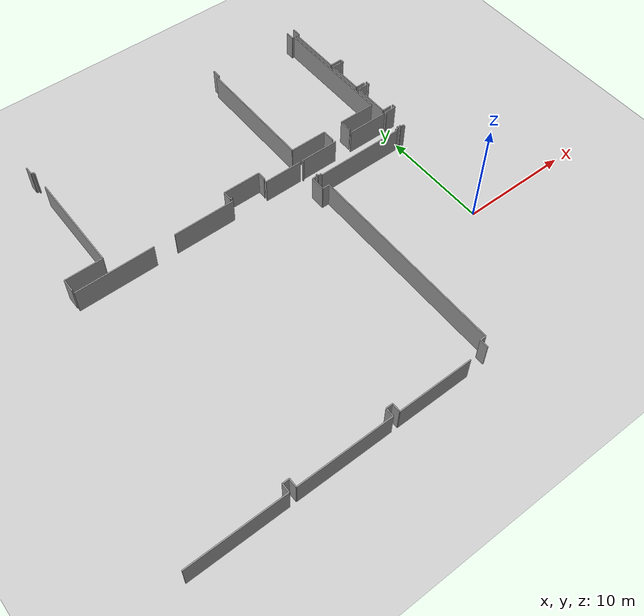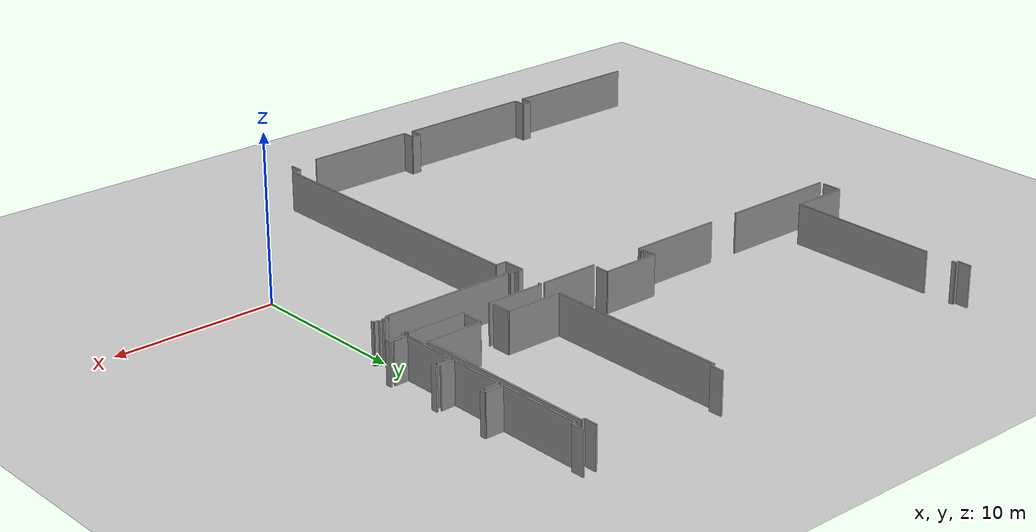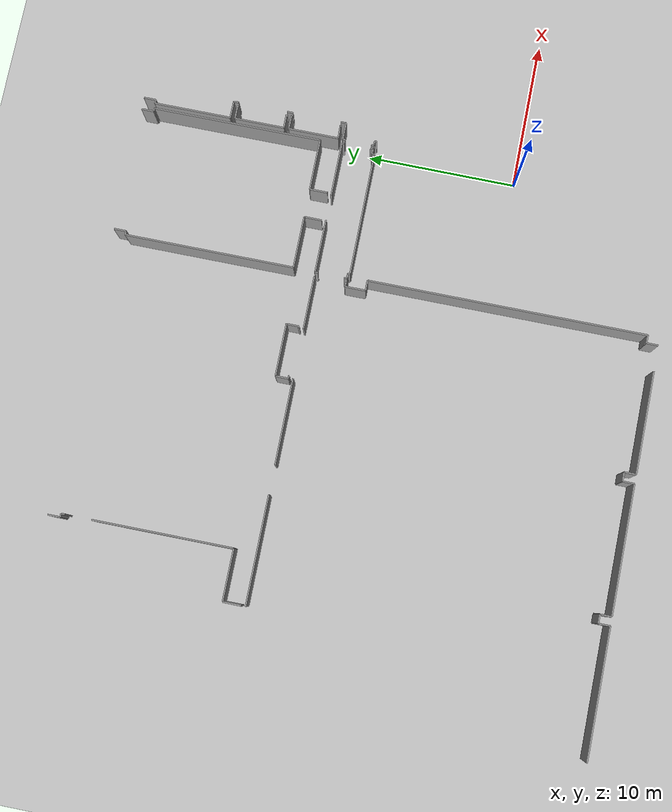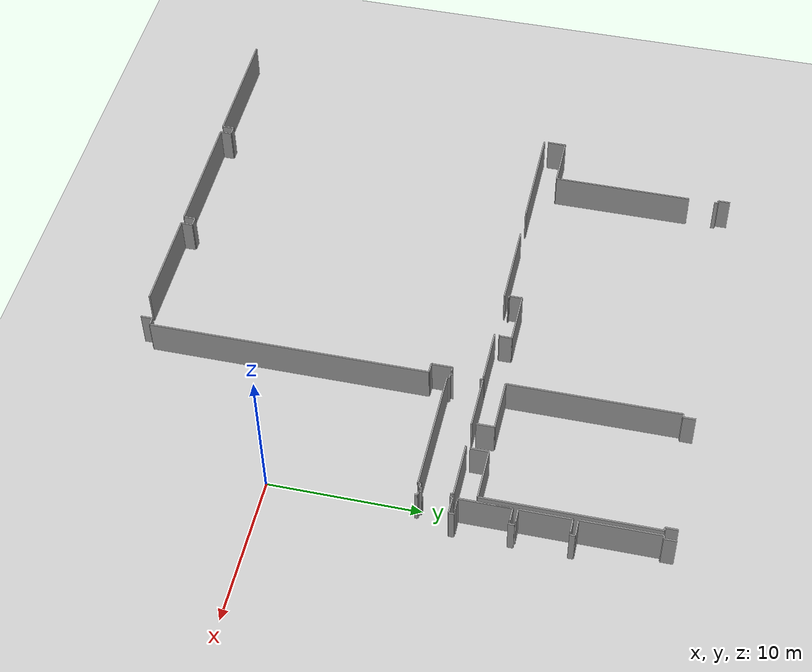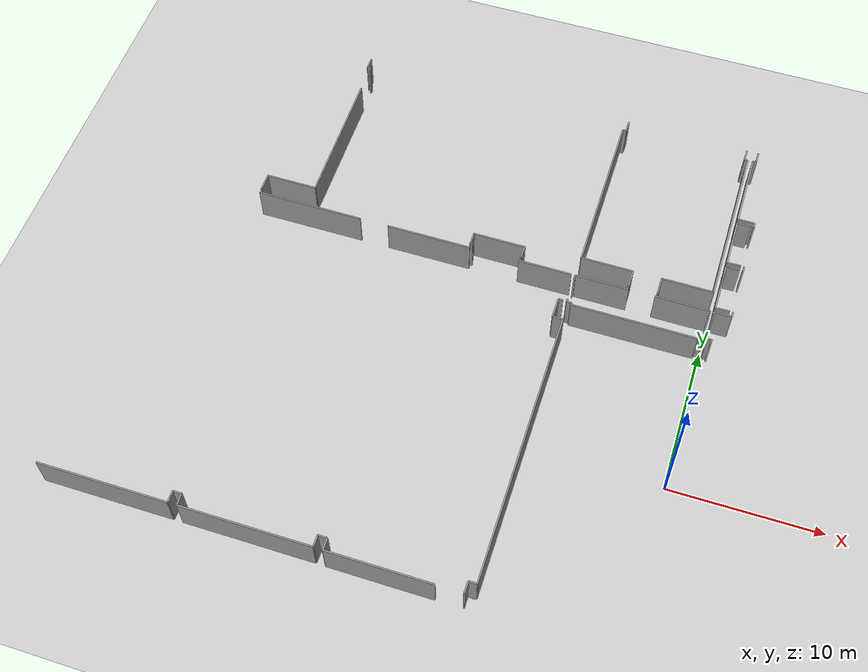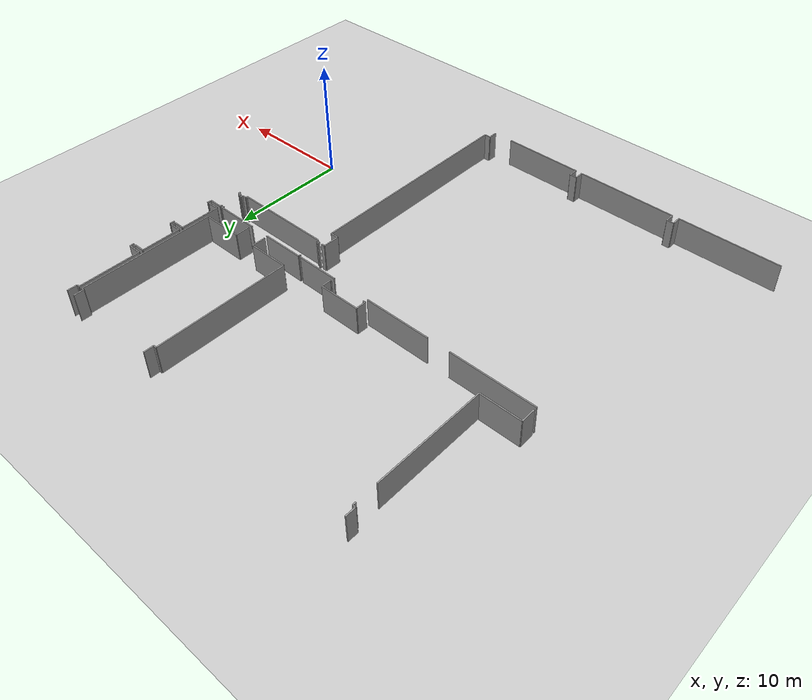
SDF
<sdf version="1.6">
 <world name="default">
  <model name="ground_plane">
   <static>1</static>
   <link name="link">
    <collision name="collision">
     <geometry><plane><normal>0 0 1</normal><size>100 100</size></plane></geometry>
     <surface><friction><ode><mu>100</mu><mu2>50</mu2></ode></friction></surface>
    </collision>
    <visual name="visual">
     <cast_shadows>0</cast_shadows>
     <geometry><plane><normal>0 0 1</normal><size>100 100</size></plane></geometry>
     <material>
      <script><uri>file://media/materials/scripts/gazebo.material</uri><name>Gazebo/Grey</name></script>
     </material>
    </visual>
   </link>
  </model>
  <model name="50045367">
   <static>1</static>
   <link name="Wall_20">
    <collision name="Wall_20_Collision">
     <geometry><box><size>0.819528431323 0.1 2.5</size></box></geometry>
     <pose>0.409764215661 0 1.25 0 0 0</pose>
    </collision>
    <visual name="Wall_20_Visual">
     <pose>0.409764215661 0 1.25 0 0 0</pose>
     <geometry><box><size>0.819528431323 0.1 2.5</size></box></geometry>
     <material>
      <script><uri>file://media/materials/scripts/gazebo.material</uri><name>Gazebo/Grey</name></script>
      <ambient>1 1 1 1</ambient>
     </material>
    </visual>
    <pose>25.0961685045 -0.00800345546013 0 0 0 -1.57079632679</pose>
   </link>
   <link name="Wall_21">
    <collision name="Wall_21_Collision">
     <geometry><box><size>0.229305350882 0.1 2.5</size></box></geometry>
     <pose>0.114652675441 0 1.25 0 0 0</pose>
    </collision>
    <visual name="Wall_21_Visual">
     <pose>0.114652675441 0 1.25 0 0 0</pose>
     <geometry><box><size>0.229305350882 0.1 2.5</size></box></geometry>
     <material>
      <script><uri>file://media/materials/scripts/gazebo.material</uri><name>Gazebo/Grey</name></script>
      <ambient>1 1 1 1</ambient>
     </material>
    </visual>
    <pose>25.0961685045 -0.827531886783 0 0 0 0.0</pose>
   </link>
   <link name="Wall_22">
    <collision name="Wall_22_Collision">
     <geometry><box><size>0.253188678286 0.1 2.5</size></box></geometry>
     <pose>0.126594339143 0 1.25 0 0 0</pose>
    </collision>
    <visual name="Wall_22_Visual">
     <pose>0.126594339143 0 1.25 0 0 0</pose>
     <geometry><box><size>0.253188678286 0.1 2.5</size></box></geometry>
     <material>
      <script><uri>file://media/materials/scripts/gazebo.material</uri><name>Gazebo/Grey</name></script>
      <ambient>1 1 1 1</ambient>
     </material>
    </visual>
    <pose>25.3254738554 -0.827531886783 0 0 0 -1.57079632679</pose>
   </link>
   <link name="Wall_23">
    <collision name="Wall_23_Collision">
     <geometry><box><size>9.36632958992 0.1 2.5</size></box></geometry>
     <pose>4.68316479496 0 1.25 0 0 0</pose>
    </collision>
    <visual name="Wall_23_Visual">
     <pose>4.68316479496 0 1.25 0 0 0</pose>
     <geometry><box><size>9.36632958992 0.1 2.5</size></box></geometry>
     <material>
      <script><uri>file://media/materials/scripts/gazebo.material</uri><name>Gazebo/Grey</name></script>
      <ambient>1 1 1 1</ambient>
     </material>
    </visual>
    <pose>25.3254738554 -2.82903094669 0 0 0 -1.57079632679</pose>
   </link>
   <link name="Wall_24">
    <collision name="Wall_24_Collision">
     <geometry><box><size>3.45863610956 0.1 2.5</size></box></geometry>
     <pose>1.72931805478 0 1.25 0 0 0</pose>
    </collision>
    <visual name="Wall_24_Visual">
     <pose>1.72931805478 0 1.25 0 0 0</pose>
     <geometry><box><size>3.45863610956 0.1 2.5</size></box></geometry>
     <material>
      <script><uri>file://media/materials/scripts/gazebo.material</uri><name>Gazebo/Grey</name></script>
      <ambient>1 1 1 1</ambient>
     </material>
    </visual>
    <pose>25.3254738554 -12.1953605366 0 0 0 3.14159265359</pose>
   </link>
   <link name="Wall_25">
    <collision name="Wall_25_Collision">
     <geometry><box><size>1.22795873774 0.1 2.5</size></box></geometry>
     <pose>0.61397936887 0 1.25 0 0 0</pose>
    </collision>
    <visual name="Wall_25_Visual">
     <pose>0.61397936887 0 1.25 0 0 0</pose>
     <geometry><box><size>1.22795873774 0.1 2.5</size></box></geometry>
     <material>
      <script><uri>file://media/materials/scripts/gazebo.material</uri><name>Gazebo/Grey</name></script>
      <ambient>1 1 1 1</ambient>
     </material>
    </visual>
    <pose>21.8668377458 -12.1953605366 0 0 0 -1.57079632679</pose>
   </link>
   <link name="Wall_32">
    <collision name="Wall_32_Collision">
     <geometry><box><size>11.3834544438 0.1 2.5</size></box></geometry>
     <pose>5.69172722191 0 1.25 0 0 0</pose>
    </collision>
    <visual name="Wall_32_Visual">
     <pose>5.69172722191 0 1.25 0 0 0</pose>
     <geometry><box><size>11.3834544438 0.1 2.5</size></box></geometry>
     <material>
      <script><uri>file://media/materials/scripts/gazebo.material</uri><name>Gazebo/Grey</name></script>
      <ambient>1 1 1 1</ambient>
     </material>
    </visual>
    <pose>44.1388027847 -12.2188627471 0 0 0 1.57079632679</pose>
   </link>
   <link name="Wall_33">
    <collision name="Wall_33_Collision">
     <geometry><box><size>0.248742314142 0.1 2.5</size></box></geometry>
     <pose>0.124371157071 0 1.25 0 0 0</pose>
    </collision>
    <visual name="Wall_33_Visual">
     <pose>0.124371157071 0 1.25 0 0 0</pose>
     <geometry><box><size>0.248742314142 0.1 2.5</size></box></geometry>
     <material>
      <script><uri>file://media/materials/scripts/gazebo.material</uri><name>Gazebo/Grey</name></script>
      <ambient>1 1 1 1</ambient>
     </material>
    </visual>
    <pose>44.1388027847 -0.835408303267 0 0 0 0.0</pose>
   </link>
   <link name="Wall_34">
    <collision name="Wall_34_Collision">
     <geometry><box><size>0.821052899029 0.1 2.5</size></box></geometry>
     <pose>0.410526449515 0 1.25 0 0 0</pose>
    </collision>
    <visual name="Wall_34_Visual">
     <pose>0.410526449515 0 1.25 0 0 0</pose>
     <geometry><box><size>0.821052899029 0.1 2.5</size></box></geometry>
     <material>
      <script><uri>file://media/materials/scripts/gazebo.material</uri><name>Gazebo/Grey</name></script>
      <ambient>1 1 1 1</ambient>
     </material>
    </visual>
    <pose>44.3875450988 -0.835408303267 0 0 0 1.57079632679</pose>
   </link>
   <link name="Wall_35">
    <collision name="Wall_35_Collision">
     <geometry><box><size>0.822704405712 0.1 2.5</size></box></geometry>
     <pose>0.411352202856 0 1.25 0 0 0</pose>
    </collision>
    <visual name="Wall_35_Visual">
     <pose>0.411352202856 0 1.25 0 0 0</pose>
     <geometry><box><size>0.822704405712 0.1 2.5</size></box></geometry>
     <material>
      <script><uri>file://media/materials/scripts/gazebo.material</uri><name>Gazebo/Grey</name></script>
      <ambient>1 1 1 1</ambient>
     </material>
    </visual>
    <pose>52.8263631282 -0.014355404238 0 0 0 -1.57079632679</pose>
   </link>
   <link name="Wall_36">
    <collision name="Wall_36_Collision">
     <geometry><box><size>0.218252960008 0.1 2.5</size></box></geometry>
     <pose>0.109126480004 0 1.25 0 0 0</pose>
    </collision>
    <visual name="Wall_36_Visual">
     <pose>0.109126480004 0 1.25 0 0 0</pose>
     <geometry><box><size>0.218252960008 0.1 2.5</size></box></geometry>
     <material>
      <script><uri>file://media/materials/scripts/gazebo.material</uri><name>Gazebo/Grey</name></script>
      <ambient>1 1 1 1</ambient>
     </material>
    </visual>
    <pose>52.8263631282 -0.83705980995 0 0 0 0.0</pose>
   </link>
   <link name="Wall_37">
    <collision name="Wall_37_Collision">
     <geometry><box><size>11.3736724427 0.1 2.5</size></box></geometry>
     <pose>5.68683622135 0 1.25 0 0 0</pose>
    </collision>
    <visual name="Wall_37_Visual">
     <pose>5.68683622135 0 1.25 0 0 0</pose>
     <geometry><box><size>11.3736724427 0.1 2.5</size></box></geometry>
     <material>
      <script><uri>file://media/materials/scripts/gazebo.material</uri><name>Gazebo/Grey</name></script>
      <ambient>1 1 1 1</ambient>
     </material>
    </visual>
    <pose>53.0446160882 -0.83705980995 0 0 0 -1.57079632679</pose>
   </link>
   <link name="Wall_38">
    <collision name="Wall_38_Collision">
     <geometry><box><size>3.46587733117 0.1 2.5</size></box></geometry>
     <pose>1.73293866558 0 1.25 0 0 0</pose>
    </collision>
    <visual name="Wall_38_Visual">
     <pose>1.73293866558 0 1.25 0 0 0</pose>
     <geometry><box><size>3.46587733117 0.1 2.5</size></box></geometry>
     <material>
      <script><uri>file://media/materials/scripts/gazebo.material</uri><name>Gazebo/Grey</name></script>
      <ambient>1 1 1 1</ambient>
     </material>
    </visual>
    <pose>53.0446160882 -12.2107322527 0 0 0 3.14159265359</pose>
   </link>
   <link name="Wall_39">
    <collision name="Wall_39_Collision">
     <geometry><box><size>1.20585395599 0.1 2.5</size></box></geometry>
     <pose>0.602926977997 0 1.25 0 0 0</pose>
    </collision>
    <visual name="Wall_39_Visual">
     <pose>0.602926977997 0 1.25 0 0 0</pose>
     <geometry><box><size>1.20585395599 0.1 2.5</size></box></geometry>
     <material>
      <script><uri>file://media/materials/scripts/gazebo.material</uri><name>Gazebo/Grey</name></script>
      <ambient>1 1 1 1</ambient>
     </material>
    </visual>
    <pose>49.5787387571 -12.2107322527 0 0 0 -1.57079632679</pose>
   </link>
   <link name="Wall_40">
    <collision name="Wall_40_Collision">
     <geometry><box><size>1.18832257737 0.1 2.5</size></box></geometry>
     <pose>0.594161288683 0 1.25 0 0 0</pose>
    </collision>
    <visual name="Wall_40_Visual">
     <pose>0.594161288683 0 1.25 0 0 0</pose>
     <geometry><box><size>1.18832257737 0.1 2.5</size></box></geometry>
     <material>
      <script><uri>file://media/materials/scripts/gazebo.material</uri><name>Gazebo/Grey</name></script>
      <ambient>1 1 1 1</ambient>
     </material>
    </visual>
    <pose>47.6478733675 -13.4165862086 0 0 0 1.57079632679</pose>
   </link>
   <link name="Wall_41">
    <collision name="Wall_41_Collision">
     <geometry><box><size>3.50908317543 0.1 2.5</size></box></geometry>
     <pose>1.75454158771 0 1.25 0 0 0</pose>
    </collision>
    <visual name="Wall_41_Visual">
     <pose>1.75454158771 0 1.25 0 0 0</pose>
     <geometry><box><size>3.50908317543 0.1 2.5</size></box></geometry>
     <material>
      <script><uri>file://media/materials/scripts/gazebo.material</uri><name>Gazebo/Grey</name></script>
      <ambient>1 1 1 1</ambient>
     </material>
    </visual>
    <pose>47.6478733675 -12.2282636313 0 0 0 3.13891363603</pose>
   </link>
   <link name="Wall_42">
    <collision name="Wall_42_Collision">
     <geometry><box><size>3.34950962955 0.1 2.5</size></box></geometry>
     <pose>1.67475481478 0 1.25 0 0 0</pose>
    </collision>
    <visual name="Wall_42_Visual">
     <pose>1.67475481478 0 1.25 0 0 0</pose>
     <geometry><box><size>3.34950962955 0.1 2.5</size></box></geometry>
     <material>
      <script><uri>file://media/materials/scripts/gazebo.material</uri><name>Gazebo/Grey</name></script>
      <ambient>1 1 1 1</ambient>
     </material>
    </visual>
    <pose>53.4071853245 -9.65597845419 0 0 0 1.57079632679</pose>
   </link>
   <link name="Wall_43">
    <collision name="Wall_43_Collision">
     <geometry><box><size>0.927892677473 0.1 2.5</size></box></geometry>
     <pose>0.463946338737 0 1.25 0 0 0</pose>
    </collision>
    <visual name="Wall_43_Visual">
     <pose>0.463946338737 0 1.25 0 0 0</pose>
     <geometry><box><size>0.927892677473 0.1 2.5</size></box></geometry>
     <material>
      <script><uri>file://media/materials/scripts/gazebo.material</uri><name>Gazebo/Grey</name></script>
      <ambient>1 1 1 1</ambient>
     </material>
    </visual>
    <pose>53.4071853245 -6.30646882464 0 0 0 0.0</pose>
   </link>
   <link name="Wall_44">
    <collision name="Wall_44_Collision">
     <geometry><box><size>0.928028550876 0.1 2.5</size></box></geometry>
     <pose>0.464014275438 0 1.25 0 0 0</pose>
    </collision>
    <visual name="Wall_44_Visual">
     <pose>0.464014275438 0 1.25 0 0 0</pose>
     <geometry><box><size>0.928028550876 0.1 2.5</size></box></geometry>
     <material>
      <script><uri>file://media/materials/scripts/gazebo.material</uri><name>Gazebo/Grey</name></script>
      <ambient>1 1 1 1</ambient>
     </material>
    </visual>
    <pose>54.3350780019 -9.64009858225 0 0 0 -3.12448041392</pose>
   </link>
   <link name="Wall_45">
    <collision name="Wall_45_Collision">
     <geometry><box><size>3.38812947812 0.1 2.5</size></box></geometry>
     <pose>1.69406473906 0 1.25 0 0 0</pose>
    </collision>
    <visual name="Wall_45_Visual">
     <pose>1.69406473906 0 1.25 0 0 0</pose>
     <geometry><box><size>3.38812947812 0.1 2.5</size></box></geometry>
     <material>
      <script><uri>file://media/materials/scripts/gazebo.material</uri><name>Gazebo/Grey</name></script>
      <ambient>1 1 1 1</ambient>
     </material>
    </visual>
    <pose>53.4104883378 -13.3705980995 0 0 0 1.57079632679</pose>
   </link>
   <link name="Wall_46">
    <collision name="Wall_46_Collision">
     <geometry><box><size>0.910869454749 0.1 2.5</size></box></geometry>
     <pose>0.455434727374 0 1.25 0 0 0</pose>
    </collision>
    <visual name="Wall_46_Visual">
     <pose>0.455434727374 0 1.25 0 0 0</pose>
     <geometry><box><size>0.910869454749 0.1 2.5</size></box></geometry>
     <material>
      <script><uri>file://media/materials/scripts/gazebo.material</uri><name>Gazebo/Grey</name></script>
      <ambient>1 1 1 1</ambient>
     </material>
    </visual>
    <pose>53.4104883378 -9.98246862137 0 0 0 0.0</pose>
   </link>
   <link name="Wall_47">
    <collision name="Wall_47_Collision">
     <geometry><box><size>0.910929021146 0.1 2.5</size></box></geometry>
     <pose>0.455464510573 0 1.25 0 0 0</pose>
    </collision>
    <visual name="Wall_47_Visual">
     <pose>0.455464510573 0 1.25 0 0 0</pose>
     <geometry><box><size>0.910929021146 0.1 2.5</size></box></geometry>
     <material>
      <script><uri>file://media/materials/scripts/gazebo.material</uri><name>Gazebo/Grey</name></script>
      <ambient>1 1 1 1</ambient>
     </material>
    </visual>
    <pose>54.3213577926 -13.3601809035 0 0 0 -3.13015661102</pose>
   </link>
   <link name="Wall_48">
    <collision name="Wall_48_Collision">
     <geometry><box><size>3.37758524315 0.1 2.5</size></box></geometry>
     <pose>1.68879262158 0 1.25 0 0 0</pose>
    </collision>
    <visual name="Wall_48_Visual">
     <pose>1.68879262158 0 1.25 0 0 0</pose>
     <geometry><box><size>3.37758524315 0.1 2.5</size></box></geometry>
     <material>
      <script><uri>file://media/materials/scripts/gazebo.material</uri><name>Gazebo/Grey</name></script>
      <ambient>1 1 1 1</ambient>
     </material>
    </visual>
    <pose>53.4074394024 -13.3684384369 0 0 0 1.57079632679</pose>
   </link>
   <link name="Wall_49">
    <collision name="Wall_49_Collision">
     <geometry><box><size>0.929798262107 0.1 2.5</size></box></geometry>
     <pose>0.464899131053 0 1.25 0 0 0</pose>
    </collision>
    <visual name="Wall_49_Visual">
     <pose>0.464899131053 0 1.25 0 0 0</pose>
     <geometry><box><size>0.929798262107 0.1 2.5</size></box></geometry>
     <material>
      <script><uri>file://media/materials/scripts/gazebo.material</uri><name>Gazebo/Grey</name></script>
      <ambient>1 1 1 1</ambient>
     </material>
    </visual>
    <pose>53.4074394024 -9.99085319376 0 0 0 0.0</pose>
   </link>
   <link name="Wall_50">
    <collision name="Wall_50_Collision">
     <geometry><box><size>0.930031655432 0.1 2.5</size></box></geometry>
     <pose>0.465015827716 0 1.25 0 0 0</pose>
    </collision>
    <visual name="Wall_50_Visual">
     <pose>0.465015827716 0 1.25 0 0 0</pose>
     <geometry><box><size>0.930031655432 0.1 2.5</size></box></geometry>
     <material>
      <script><uri>file://media/materials/scripts/gazebo.material</uri><name>Gazebo/Grey</name></script>
      <ambient>1 1 1 1</ambient>
     </material>
    </visual>
    <pose>54.3372376645 -13.3476040449 0 0 0 -3.11918896996</pose>
   </link>
   <link name="Wall_51">
    <collision name="Wall_51_Collision">
     <geometry><box><size>5.15943391432 0.1 2.5</size></box></geometry>
     <pose>2.57971695716 0 1.25 0 0 0</pose>
    </collision>
    <visual name="Wall_51_Visual">
     <pose>2.57971695716 0 1.25 0 0 0</pose>
     <geometry><box><size>5.15943391432 0.1 2.5</size></box></geometry>
     <material>
      <script><uri>file://media/materials/scripts/gazebo.material</uri><name>Gazebo/Grey</name></script>
      <ambient>1 1 1 1</ambient>
     </material>
    </visual>
    <pose>53.3932110371 -5.96968850043 0 0 0 1.57079632679</pose>
   </link>
   <link name="Wall_52">
    <collision name="Wall_52_Collision">
     <geometry><box><size>0.24023070278 0.1 2.5</size></box></geometry>
     <pose>0.12011535139 0 1.25 0 0 0</pose>
    </collision>
    <visual name="Wall_52_Visual">
     <pose>0.12011535139 0 1.25 0 0 0</pose>
     <geometry><box><size>0.24023070278 0.1 2.5</size></box></geometry>
     <material>
      <script><uri>file://media/materials/scripts/gazebo.material</uri><name>Gazebo/Grey</name></script>
      <ambient>1 1 1 1</ambient>
     </material>
    </visual>
    <pose>53.3932110371 -0.810254586107 0 0 0 0.0</pose>
   </link>
   <link name="Wall_53">
    <collision name="Wall_53_Collision">
     <geometry><box><size>0.810254586107 0.1 2.5</size></box></geometry>
     <pose>0.405127293054 0 1.25 0 0 0</pose>
    </collision>
    <visual name="Wall_53_Visual">
     <pose>0.405127293054 0 1.25 0 0 0</pose>
     <geometry><box><size>0.810254586107 0.1 2.5</size></box></geometry>
     <material>
      <script><uri>file://media/materials/scripts/gazebo.material</uri><name>Gazebo/Grey</name></script>
      <ambient>1 1 1 1</ambient>
     </material>
    </visual>
    <pose>53.6334417399 -0.810254586107 0 0 0 1.57079632679</pose>
   </link>
   <link name="Wall_65">
    <collision name="Wall_65_Collision">
     <geometry><box><size>0.183190202754 0.1 2.5</size></box></geometry>
     <pose>0.0915951013771 0 1.25 0 0 0</pose>
    </collision>
    <visual name="Wall_65_Visual">
     <pose>0.0915951013771 0 1.25 0 0 0</pose>
     <geometry><box><size>0.183190202754 0.1 2.5</size></box></geometry>
     <material>
      <script><uri>file://media/materials/scripts/gazebo.material</uri><name>Gazebo/Grey</name></script>
      <ambient>1 1 1 1</ambient>
     </material>
    </visual>
    <pose>53.6784135373 -15.987728035 0 0 0 1.57079632679</pose>
   </link>
   <link name="Wall_66">
    <collision name="Wall_66_Collision">
     <geometry><box><size>0.2905381371 0.1 2.5</size></box></geometry>
     <pose>0.14526906855 0 1.25 0 0 0</pose>
    </collision>
    <visual name="Wall_66_Visual">
     <pose>0.14526906855 0 1.25 0 0 0</pose>
     <geometry><box><size>0.2905381371 0.1 2.5</size></box></geometry>
     <material>
      <script><uri>file://media/materials/scripts/gazebo.material</uri><name>Gazebo/Grey</name></script>
      <ambient>1 1 1 1</ambient>
     </material>
    </visual>
    <pose>53.6784135373 -15.8045378322 0 0 0 3.14159265359</pose>
   </link>
   <link name="Wall_67">
    <collision name="Wall_67_Collision">
     <geometry><box><size>0.170486305198 0.1 2.5</size></box></geometry>
     <pose>0.0852431525992 0 1.25 0 0 0</pose>
    </collision>
    <visual name="Wall_67_Visual">
     <pose>0.0852431525992 0 1.25 0 0 0</pose>
     <geometry><box><size>0.170486305198 0.1 2.5</size></box></geometry>
     <material>
      <script><uri>file://media/materials/scripts/gazebo.material</uri><name>Gazebo/Grey</name></script>
      <ambient>1 1 1 1</ambient>
     </material>
    </visual>
    <pose>53.3878754002 -15.8045378322 0 0 0 1.57079632679</pose>
   </link>
   <link name="Wall_68">
    <collision name="Wall_68_Collision">
     <geometry><box><size>0.188779917679 0.1 2.5</size></box></geometry>
     <pose>0.0943899588394 0 1.25 0 0 0</pose>
    </collision>
    <visual name="Wall_68_Visual">
     <pose>0.0943899588394 0 1.25 0 0 0</pose>
     <geometry><box><size>0.188779917679 0.1 2.5</size></box></geometry>
     <material>
      <script><uri>file://media/materials/scripts/gazebo.material</uri><name>Gazebo/Grey</name></script>
      <ambient>1 1 1 1</ambient>
     </material>
    </visual>
    <pose>53.3878754002 -13.8768484171 0 0 0 1.57079632679</pose>
   </link>
   <link name="Wall_69">
    <collision name="Wall_69_Collision">
     <geometry><box><size>1.15999288582 0.1 2.5</size></box></geometry>
     <pose>0.579996442909 0 1.25 0 0 0</pose>
    </collision>
    <visual name="Wall_69_Visual">
     <pose>0.579996442909 0 1.25 0 0 0</pose>
     <geometry><box><size>1.15999288582 0.1 2.5</size></box></geometry>
     <material>
      <script><uri>file://media/materials/scripts/gazebo.material</uri><name>Gazebo/Grey</name></script>
      <ambient>1 1 1 1</ambient>
     </material>
    </visual>
    <pose>53.3878754002 -13.6880684994 0 0 0 0.0</pose>
   </link>
   <link name="Wall_70">
    <collision name="Wall_70_Collision">
     <geometry><box><size>0.355963209513 0.1 2.5</size></box></geometry>
     <pose>0.177981604756 0 1.25 0 0 0</pose>
    </collision>
    <visual name="Wall_70_Visual">
     <pose>0.177981604756 0 1.25 0 0 0</pose>
     <geometry><box><size>0.355963209513 0.1 2.5</size></box></geometry>
     <material>
      <script><uri>file://media/materials/scripts/gazebo.material</uri><name>Gazebo/Grey</name></script>
      <ambient>1 1 1 1</ambient>
     </material>
    </visual>
    <pose>54.547868286 -13.6880684994 0 0 0 1.57079632679</pose>
   </link>
   <link name="Wall_71">
    <collision name="Wall_71_Collision">
     <geometry><box><size>0.403475786371 0.1 2.5</size></box></geometry>
     <pose>0.201737893186 0 1.25 0 0 0</pose>
    </collision>
    <visual name="Wall_71_Visual">
     <pose>0.201737893186 0 1.25 0 0 0</pose>
     <geometry><box><size>0.403475786371 0.1 2.5</size></box></geometry>
     <material>
      <script><uri>file://media/materials/scripts/gazebo.material</uri><name>Gazebo/Grey</name></script>
      <ambient>1 1 1 1</ambient>
     </material>
    </visual>
    <pose>54.547868286 -10.0570405 0 0 0 1.57079632679</pose>
   </link>
   <link name="Wall_72">
    <collision name="Wall_72_Collision">
     <geometry><box><size>0.34859494893 0.1 2.5</size></box></geometry>
     <pose>0.174297474465 0 1.25 0 0 0</pose>
    </collision>
    <visual name="Wall_72_Visual">
     <pose>0.174297474465 0 1.25 0 0 0</pose>
     <geometry><box><size>0.34859494893 0.1 2.5</size></box></geometry>
     <material>
      <script><uri>file://media/materials/scripts/gazebo.material</uri><name>Gazebo/Grey</name></script>
      <ambient>1 1 1 1</ambient>
     </material>
    </visual>
    <pose>54.547868286 -6.32933584024 0 0 0 1.57079632679</pose>
   </link>
   <link name="Wall_73">
    <collision name="Wall_73_Collision">
     <geometry><box><size>1.15325982011 0.1 2.5</size></box></geometry>
     <pose>0.576629910056 0 1.25 0 0 0</pose>
    </collision>
    <visual name="Wall_73_Visual">
     <pose>0.576629910056 0 1.25 0 0 0</pose>
     <geometry><box><size>1.15325982011 0.1 2.5</size></box></geometry>
     <material>
      <script><uri>file://media/materials/scripts/gazebo.material</uri><name>Gazebo/Grey</name></script>
      <ambient>1 1 1 1</ambient>
     </material>
    </visual>
    <pose>54.547868286 -5.98074089131 0 0 0 3.14159265359</pose>
   </link>
   <link name="Wall_74">
    <collision name="Wall_74_Collision">
     <geometry><box><size>0.201737893186 0.1 2.5</size></box></geometry>
     <pose>0.100868946593 0 1.25 0 0 0</pose>
    </collision>
    <visual name="Wall_74_Visual">
     <pose>0.100868946593 0 1.25 0 0 0</pose>
     <geometry><box><size>0.201737893186 0.1 2.5</size></box></geometry>
     <material>
      <script><uri>file://media/materials/scripts/gazebo.material</uri><name>Gazebo/Grey</name></script>
      <ambient>1 1 1 1</ambient>
     </material>
    </visual>
    <pose>44.1104730931 -15.8301997053 0 0 0 1.57079632679</pose>
   </link>
   <link name="Wall_75">
    <collision name="Wall_75_Collision">
     <geometry><box><size>0.192082931043 0.1 2.5</size></box></geometry>
     <pose>0.0960414655216 0 1.25 0 0 0</pose>
    </collision>
    <visual name="Wall_75_Visual">
     <pose>0.0960414655216 0 1.25 0 0 0</pose>
     <geometry><box><size>0.192082931043 0.1 2.5</size></box></geometry>
     <material>
      <script><uri>file://media/materials/scripts/gazebo.material</uri><name>Gazebo/Grey</name></script>
      <ambient>1 1 1 1</ambient>
     </material>
    </visual>
    <pose>44.1104730931 -13.8801514305 0 0 0 1.57079632679</pose>
   </link>
   <link name="Wall_76">
    <collision name="Wall_76_Collision">
     <geometry><box><size>3.62150007622 0.1 2.5</size></box></geometry>
     <pose>1.81075003811 0 1.25 0 0 0</pose>
    </collision>
    <visual name="Wall_76_Visual">
     <pose>1.81075003811 0 1.25 0 0 0</pose>
     <geometry><box><size>3.62150007622 0.1 2.5</size></box></geometry>
     <material>
      <script><uri>file://media/materials/scripts/gazebo.material</uri><name>Gazebo/Grey</name></script>
      <ambient>1 1 1 1</ambient>
     </material>
    </visual>
    <pose>44.1104730931 -13.6880684994 0 0 0 0.0</pose>
   </link>
   <link name="Wall_77">
    <collision name="Wall_77_Collision">
     <geometry><box><size>3.67015600386 0.1 2.5</size></box></geometry>
     <pose>1.83507800193 0 1.25 0 0 0</pose>
    </collision>
    <visual name="Wall_77_Visual">
     <pose>1.83507800193 0 1.25 0 0 0</pose>
     <geometry><box><size>3.67015600386 0.1 2.5</size></box></geometry>
     <material>
      <script><uri>file://media/materials/scripts/gazebo.material</uri><name>Gazebo/Grey</name></script>
      <ambient>1 1 1 1</ambient>
     </material>
    </visual>
    <pose>49.4651659129 -13.6880684994 0 0 0 0.0</pose>
   </link>
   <link name="Wall_78">
    <collision name="Wall_78_Collision">
     <geometry><box><size>0.187128410996 0.1 2.5</size></box></geometry>
     <pose>0.0935642054982 0 1.25 0 0 0</pose>
    </collision>
    <visual name="Wall_78_Visual">
     <pose>0.0935642054982 0 1.25 0 0 0</pose>
     <geometry><box><size>0.187128410996 0.1 2.5</size></box></geometry>
     <material>
      <script><uri>file://media/materials/scripts/gazebo.material</uri><name>Gazebo/Grey</name></script>
      <ambient>1 1 1 1</ambient>
     </material>
    </visual>
    <pose>53.1353219168 -13.6880684994 0 0 0 -1.57079632679</pose>
   </link>
   <link name="Wall_79">
    <collision name="Wall_79_Collision">
     <geometry><box><size>0.183825397632 0.1 2.5</size></box></geometry>
     <pose>0.091912698816 0 1.25 0 0 0</pose>
    </collision>
    <visual name="Wall_79_Visual">
     <pose>0.091912698816 0 1.25 0 0 0</pose>
     <geometry><box><size>0.183825397632 0.1 2.5</size></box></geometry>
     <material>
      <script><uri>file://media/materials/scripts/gazebo.material</uri><name>Gazebo/Grey</name></script>
      <ambient>1 1 1 1</ambient>
     </material>
    </visual>
    <pose>53.1353219168 -15.6116926673 0 0 0 -1.57079632679</pose>
   </link>
   <link name="Wall_80">
    <collision name="Wall_80_Collision">
     <geometry><box><size>0.353930585904 0.1 2.5</size></box></geometry>
     <pose>0.176965292952 0 1.25 0 0 0</pose>
    </collision>
    <visual name="Wall_80_Visual">
     <pose>0.176965292952 0 1.25 0 0 0</pose>
     <geometry><box><size>0.353930585904 0.1 2.5</size></box></geometry>
     <material>
      <script><uri>file://media/materials/scripts/gazebo.material</uri><name>Gazebo/Grey</name></script>
      <ambient>1 1 1 1</ambient>
     </material>
    </visual>
    <pose>53.1353219168 -15.7955180649 0 0 0 3.14159265359</pose>
   </link>
   <link name="Wall_81">
    <collision name="Wall_81_Collision">
     <geometry><box><size>0.175440825245 0.1 2.5</size></box></geometry>
     <pose>0.0877204126226 0 1.25 0 0 0</pose>
    </collision>
    <visual name="Wall_81_Visual">
     <pose>0.0877204126226 0 1.25 0 0 0</pose>
     <geometry><box><size>0.175440825245 0.1 2.5</size></box></geometry>
     <material>
      <script><uri>file://media/materials/scripts/gazebo.material</uri><name>Gazebo/Grey</name></script>
      <ambient>1 1 1 1</ambient>
     </material>
    </visual>
    <pose>52.7813913309 -15.7955180649 0 0 0 -1.57079632679</pose>
   </link>
   <link name="Wall_82">
    <collision name="Wall_82_Collision">
     <geometry><box><size>8.35154225316 0.1 2.5</size></box></geometry>
     <pose>4.17577112658 0 1.25 0 0 0</pose>
    </collision>
    <visual name="Wall_82_Visual">
     <pose>4.17577112658 0 1.25 0 0 0</pose>
     <geometry><box><size>8.35154225316 0.1 2.5</size></box></geometry>
     <material>
      <script><uri>file://media/materials/scripts/gazebo.material</uri><name>Gazebo/Grey</name></script>
      <ambient>1 1 1 1</ambient>
     </material>
    </visual>
    <pose>52.7813913309 -15.9709588902 0 0 0 3.14159265359</pose>
   </link>
   <link name="Wall_83">
    <collision name="Wall_83_Collision">
     <geometry><box><size>0.147492250622 0.1 2.5</size></box></geometry>
     <pose>0.0737461253112 0 1.25 0 0 0</pose>
    </collision>
    <visual name="Wall_83_Visual">
     <pose>0.0737461253112 0 1.25 0 0 0</pose>
     <geometry><box><size>0.147492250622 0.1 2.5</size></box></geometry>
     <material>
      <script><uri>file://media/materials/scripts/gazebo.material</uri><name>Gazebo/Grey</name></script>
      <ambient>1 1 1 1</ambient>
     </material>
    </visual>
    <pose>44.4298490777 -15.9709588902 0 0 0 1.57079632679</pose>
   </link>
   <link name="Wall_84">
    <collision name="Wall_84_Collision">
     <geometry><box><size>0.319446949715 0.1 2.5</size></box></geometry>
     <pose>0.159723474858 0 1.25 0 0 0</pose>
    </collision>
    <visual name="Wall_84_Visual">
     <pose>0.159723474858 0 1.25 0 0 0</pose>
     <geometry><box><size>0.319446949715 0.1 2.5</size></box></geometry>
     <material>
      <script><uri>file://media/materials/scripts/gazebo.material</uri><name>Gazebo/Grey</name></script>
      <ambient>1 1 1 1</ambient>
     </material>
    </visual>
    <pose>44.4298490777 -15.8234666396 0 0 0 -3.1205138349</pose>
   </link>
   <link name="Wall_99">
    <collision name="Wall_99_Collision">
     <geometry><box><size>7.29330758677 0.1 2.5</size></box></geometry>
     <pose>3.64665379338 0 1.25 0 0 0</pose>
    </collision>
    <visual name="Wall_99_Visual">
     <pose>3.64665379338 0 1.25 0 0 0</pose>
     <geometry><box><size>7.29330758677 0.1 2.5</size></box></geometry>
     <material>
      <script><uri>file://media/materials/scripts/gazebo.material</uri><name>Gazebo/Grey</name></script>
      <ambient>1 1 1 1</ambient>
     </material>
    </visual>
    <pose>21.8534986534 -13.6988668123 0 0 0 0.0</pose>
   </link>
   <link name="Wall_100">
    <collision name="Wall_100_Collision">
     <geometry><box><size>5.75270593018 0.1 2.5</size></box></geometry>
     <pose>2.87635296509 0 1.25 0 0 0</pose>
    </collision>
    <visual name="Wall_100_Visual">
     <pose>2.87635296509 0 1.25 0 0 0</pose>
     <geometry><box><size>5.75270593018 0.1 2.5</size></box></geometry>
     <material>
      <script><uri>file://media/materials/scripts/gazebo.material</uri><name>Gazebo/Grey</name></script>
      <ambient>1 1 1 1</ambient>
     </material>
    </visual>
    <pose>31.1085421007 -13.6988668123 0 0 0 0.0</pose>
   </link>
   <link name="Wall_101">
    <collision name="Wall_101_Collision">
     <geometry><box><size>3.61044768535 0.1 2.5</size></box></geometry>
     <pose>1.80522384267 0 1.25 0 0 0</pose>
    </collision>
    <visual name="Wall_101_Visual">
     <pose>1.80522384267 0 1.25 0 0 0</pose>
     <geometry><box><size>3.61044768535 0.1 2.5</size></box></geometry>
     <material>
      <script><uri>file://media/materials/scripts/gazebo.material</uri><name>Gazebo/Grey</name></script>
      <ambient>1 1 1 1</ambient>
     </material>
    </visual>
    <pose>40.2455663398 -13.6988668123 0 0 0 0.0</pose>
   </link>
   <link name="Wall_102">
    <collision name="Wall_102_Collision">
     <geometry><box><size>0.312388840896 0.1 2.5</size></box></geometry>
     <pose>0.156194420448 0 1.25 0 0 0</pose>
    </collision>
    <visual name="Wall_102_Visual">
     <pose>0.156194420448 0 1.25 0 0 0</pose>
     <geometry><box><size>0.312388840896 0.1 2.5</size></box></geometry>
     <material>
      <script><uri>file://media/materials/scripts/gazebo.material</uri><name>Gazebo/Grey</name></script>
      <ambient>1 1 1 1</ambient>
     </material>
    </visual>
    <pose>43.8560140251 -15.8089841964 0 0 0 3.14159265359</pose>
   </link>
   <link name="Wall_103">
    <collision name="Wall_103_Collision">
     <geometry><box><size>1.38523298948 0.1 2.5</size></box></geometry>
     <pose>0.692616494741 0 1.25 0 0 0</pose>
    </collision>
    <visual name="Wall_103_Visual">
     <pose>0.692616494741 0 1.25 0 0 0</pose>
     <geometry><box><size>1.38523298948 0.1 2.5</size></box></geometry>
     <material>
      <script><uri>file://media/materials/scripts/gazebo.material</uri><name>Gazebo/Grey</name></script>
      <ambient>1 1 1 1</ambient>
     </material>
    </visual>
    <pose>43.5436251842 -15.8089841964 0 0 0 -1.57079632679</pose>
   </link>
   <link name="Wall_104">
    <collision name="Wall_104_Collision">
     <geometry><box><size>0.691727221912 0.1 2.5</size></box></geometry>
     <pose>0.345863610956 0 1.25 0 0 0</pose>
    </collision>
    <visual name="Wall_104_Visual">
     <pose>0.345863610956 0 1.25 0 0 0</pose>
     <geometry><box><size>0.691727221912 0.1 2.5</size></box></geometry>
     <material>
      <script><uri>file://media/materials/scripts/gazebo.material</uri><name>Gazebo/Grey</name></script>
      <ambient>1 1 1 1</ambient>
     </material>
    </visual>
    <pose>43.5436251842 -17.1942171858 0 0 0 0.0</pose>
   </link>
   <link name="Wall_105">
    <collision name="Wall_105_Collision">
     <geometry><box><size>18.7495553636 0.1 2.5</size></box></geometry>
     <pose>9.37477768179 0 1.25 0 0 0</pose>
    </collision>
    <visual name="Wall_105_Visual">
     <pose>9.37477768179 0 1.25 0 0 0</pose>
     <geometry><box><size>18.7495553636 0.1 2.5</size></box></geometry>
     <material>
      <script><uri>file://media/materials/scripts/gazebo.material</uri><name>Gazebo/Grey</name></script>
      <ambient>1 1 1 1</ambient>
     </material>
    </visual>
    <pose>44.2353524061 -17.1942171858 0 0 0 -1.57079632679</pose>
   </link>
   <link name="Wall_106">
    <collision name="Wall_106_Collision">
     <geometry><box><size>0.540677879974 0.1 2.5</size></box></geometry>
     <pose>0.270338939987 0 1.25 0 0 0</pose>
    </collision>
    <visual name="Wall_106_Visual">
     <pose>0.270338939987 0 1.25 0 0 0</pose>
     <geometry><box><size>0.540677879974 0.1 2.5</size></box></geometry>
     <material>
      <script><uri>file://media/materials/scripts/gazebo.material</uri><name>Gazebo/Grey</name></script>
      <ambient>1 1 1 1</ambient>
     </material>
    </visual>
    <pose>44.2353524061 -35.9437725494 0 0 0 3.14159265359</pose>
   </link>
   <link name="Wall_107">
    <collision name="Wall_107_Collision">
     <geometry><box><size>0.779892270949 0.1 2.5</size></box></geometry>
     <pose>0.389946135474 0 1.25 0 0 0</pose>
    </collision>
    <visual name="Wall_107_Visual">
     <pose>0.389946135474 0 1.25 0 0 0</pose>
     <geometry><box><size>0.779892270949 0.1 2.5</size></box></geometry>
     <material>
      <script><uri>file://media/materials/scripts/gazebo.material</uri><name>Gazebo/Grey</name></script>
      <ambient>1 1 1 1</ambient>
     </material>
    </visual>
    <pose>43.6946745261 -35.9437725494 0 0 0 -1.57079632679</pose>
   </link>
   <link name="Wall_108">
    <collision name="Wall_108_Collision">
     <geometry><box><size>6.8908481122 0.1 2.5</size></box></geometry>
     <pose>3.4454240561 0 1.25 0 0 0</pose>
    </collision>
    <visual name="Wall_108_Visual">
     <pose>3.4454240561 0 1.25 0 0 0</pose>
     <geometry><box><size>6.8908481122 0.1 2.5</size></box></geometry>
     <material>
      <script><uri>file://media/materials/scripts/gazebo.material</uri><name>Gazebo/Grey</name></script>
      <ambient>1 1 1 1</ambient>
     </material>
    </visual>
    <pose>41.9431881701 -36.7236648204 0 0 0 3.14159265359</pose>
   </link>
   <link name="Wall_109">
    <collision name="Wall_109_Collision">
     <geometry><box><size>0.789801311042 0.1 2.5</size></box></geometry>
     <pose>0.394900655521 0 1.25 0 0 0</pose>
    </collision>
    <visual name="Wall_109_Visual">
     <pose>0.394900655521 0 1.25 0 0 0</pose>
     <geometry><box><size>0.789801311042 0.1 2.5</size></box></geometry>
     <material>
      <script><uri>file://media/materials/scripts/gazebo.material</uri><name>Gazebo/Grey</name></script>
      <ambient>1 1 1 1</ambient>
     </material>
    </visual>
    <pose>35.0523400579 -36.7236648204 0 0 0 1.57079632679</pose>
   </link>
   <link name="Wall_110">
    <collision name="Wall_110_Collision">
     <geometry><box><size>0.606357030337 0.1 2.5</size></box></geometry>
     <pose>0.303178515168 0 1.25 0 0 0</pose>
    </collision>
    <visual name="Wall_110_Visual">
     <pose>0.303178515168 0 1.25 0 0 0</pose>
     <geometry><box><size>0.606357030337 0.1 2.5</size></box></geometry>
     <material>
      <script><uri>file://media/materials/scripts/gazebo.material</uri><name>Gazebo/Grey</name></script>
      <ambient>1 1 1 1</ambient>
     </material>
    </visual>
    <pose>35.0523400579 -35.9338635093 0 0 0 3.14159265359</pose>
   </link>
   <link name="Wall_111">
    <collision name="Wall_111_Collision">
     <geometry><box><size>0.776843335535 0.1 2.5</size></box></geometry>
     <pose>0.388421667768 0 1.25 0 0 0</pose>
    </collision>
    <visual name="Wall_111_Visual">
     <pose>0.388421667768 0 1.25 0 0 0</pose>
     <geometry><box><size>0.776843335535 0.1 2.5</size></box></geometry>
     <material>
      <script><uri>file://media/materials/scripts/gazebo.material</uri><name>Gazebo/Grey</name></script>
      <ambient>1 1 1 1</ambient>
     </material>
    </visual>
    <pose>34.4459830276 -35.9338635093 0 0 0 -1.57079632679</pose>
   </link>
   <link name="Wall_112">
    <collision name="Wall_112_Collision">
     <geometry><box><size>8.64563748158 0.1 2.5</size></box></geometry>
     <pose>4.32281874079 0 1.25 0 0 0</pose>
    </collision>
    <visual name="Wall_112_Visual">
     <pose>4.32281874079 0 1.25 0 0 0</pose>
     <geometry><box><size>8.64563748158 0.1 2.5</size></box></geometry>
     <material>
      <script><uri>file://media/materials/scripts/gazebo.material</uri><name>Gazebo/Grey</name></script>
      <ambient>1 1 1 1</ambient>
     </material>
    </visual>
    <pose>34.4459830276 -36.7107068449 0 0 0 3.14159265359</pose>
   </link>
   <link name="Wall_113">
    <collision name="Wall_113_Collision">
     <geometry><box><size>0.774429595 0.1 2.5</size></box></geometry>
     <pose>0.3872147975 0 1.25 0 0 0</pose>
    </collision>
    <visual name="Wall_113_Visual">
     <pose>0.3872147975 0 1.25 0 0 0</pose>
     <geometry><box><size>0.774429595 0.1 2.5</size></box></geometry>
     <material>
      <script><uri>file://media/materials/scripts/gazebo.material</uri><name>Gazebo/Grey</name></script>
      <ambient>1 1 1 1</ambient>
     </material>
    </visual>
    <pose>25.800345546 -36.7107068449 0 0 0 1.57079632679</pose>
   </link>
   <link name="Wall_114">
    <collision name="Wall_114_Collision">
     <geometry><box><size>0.59225570405 0.1 2.5</size></box></geometry>
     <pose>0.296127852025 0 1.25 0 0 0</pose>
    </collision>
    <visual name="Wall_114_Visual">
     <pose>0.296127852025 0 1.25 0 0 0</pose>
     <geometry><box><size>0.59225570405 0.1 2.5</size></box></geometry>
     <material>
      <script><uri>file://media/materials/scripts/gazebo.material</uri><name>Gazebo/Grey</name></script>
      <ambient>1 1 1 1</ambient>
     </material>
    </visual>
    <pose>25.800345546 -35.9362772499 0 0 0 3.14159265359</pose>
   </link>
   <link name="Wall_115">
    <collision name="Wall_115_Collision">
     <geometry><box><size>0.780019309924 0.1 2.5</size></box></geometry>
     <pose>0.390009654962 0 1.25 0 0 0</pose>
    </collision>
    <visual name="Wall_115_Visual">
     <pose>0.390009654962 0 1.25 0 0 0</pose>
     <geometry><box><size>0.780019309924 0.1 2.5</size></box></geometry>
     <material>
      <script><uri>file://media/materials/scripts/gazebo.material</uri><name>Gazebo/Grey</name></script>
      <ambient>1 1 1 1</ambient>
     </material>
    </visual>
    <pose>25.208089842 -35.9362772499 0 0 0 -1.57079632679</pose>
   </link>
   <link name="Wall_116">
    <collision name="Wall_116_Collision">
     <geometry><box><size>8.64881345597 0.1 2.5</size></box></geometry>
     <pose>4.32440672798 0 1.25 0 0 0</pose>
    </collision>
    <visual name="Wall_116_Visual">
     <pose>4.32440672798 0 1.25 0 0 0</pose>
     <geometry><box><size>8.64881345597 0.1 2.5</size></box></geometry>
     <material>
      <script><uri>file://media/materials/scripts/gazebo.material</uri><name>Gazebo/Grey</name></script>
      <ambient>1 1 1 1</ambient>
     </material>
    </visual>
    <pose>25.208089842 -36.7162965598 0 0 0 3.14159265359</pose>
   </link>
   <link name="Wall_492">
    <collision name="Wall_492_Collision">
     <geometry><box><size>0.86450022867 0.1 2.5</size></box></geometry>
     <pose>0.432250114335 0 1.25 0 0 0</pose>
    </collision>
    <visual name="Wall_492_Visual">
     <pose>0.432250114335 0 1.25 0 0 0</pose>
     <geometry><box><size>0.86450022867 0.1 2.5</size></box></geometry>
     <material>
      <script><uri>file://media/materials/scripts/gazebo.material</uri><name>Gazebo/Grey</name></script>
      <ambient>1 1 1 1</ambient>
     </material>
    </visual>
    <pose>36.8003963616 -13.3998170639 0 0 0 1.57079632679</pose>
   </link>
   <link name="Wall_493">
    <collision name="Wall_493_Collision">
     <geometry><box><size>3.53498653387 0.1 2.5</size></box></geometry>
     <pose>1.76749326693 0 1.25 0 0 0</pose>
    </collision>
    <visual name="Wall_493_Visual">
     <pose>1.76749326693 0 1.25 0 0 0</pose>
     <geometry><box><size>3.53498653387 0.1 2.5</size></box></geometry>
     <material>
      <script><uri>file://media/materials/scripts/gazebo.material</uri><name>Gazebo/Grey</name></script>
      <ambient>1 1 1 1</ambient>
     </material>
    </visual>
    <pose>36.8003963616 -12.5353168352 0 0 0 0.0</pose>
   </link>
   <link name="Wall_494">
    <collision name="Wall_494_Collision">
     <geometry><box><size>0.831216017074 0.1 2.5</size></box></geometry>
     <pose>0.415608008537 0 1.25 0 0 0</pose>
    </collision>
    <visual name="Wall_494_Visual">
     <pose>0.415608008537 0 1.25 0 0 0</pose>
     <geometry><box><size>0.831216017074 0.1 2.5</size></box></geometry>
     <material>
      <script><uri>file://media/materials/scripts/gazebo.material</uri><name>Gazebo/Grey</name></script>
      <ambient>1 1 1 1</ambient>
     </material>
    </visual>
    <pose>40.3353828955 -12.5353168352 0 0 0 -1.57079632679</pose>
   </link>
   <link name="Wall_495">
    <collision name="Wall_495_Collision">
     <geometry><box><size>0.0848620356725 0.1 2.5</size></box></geometry>
     <pose>0.0424310178363 0 1.25 0 0 0</pose>
    </collision>
    <visual name="Wall_495_Visual">
     <pose>0.0424310178363 0 1.25 0 0 0</pose>
     <geometry><box><size>0.0848620356725 0.1 2.5</size></box></geometry>
     <material>
      <script><uri>file://media/materials/scripts/gazebo.material</uri><name>Gazebo/Grey</name></script>
      <ambient>1 1 1 1</ambient>
     </material>
    </visual>
    <pose>40.3353828955 -13.3665328523 0 0 0 3.14159265359</pose>
   </link>
   <link name="Wall_496">
    <collision name="Wall_496_Collision">
     <geometry><box><size>0.0316327049139 0.1 2.5</size></box></geometry>
     <pose>0.0158163524569 0 1.25 0 0 0</pose>
    </collision>
    <visual name="Wall_496_Visual">
     <pose>0.0158163524569 0 1.25 0 0 0</pose>
     <geometry><box><size>0.0316327049139 0.1 2.5</size></box></geometry>
     <material>
      <script><uri>file://media/materials/scripts/gazebo.material</uri><name>Gazebo/Grey</name></script>
      <ambient>1 1 1 1</ambient>
     </material>
    </visual>
    <pose>36.9721530566 -13.3665328523 0 0 0 -1.57079632679</pose>
   </link>
   <link name="Wall_497">
    <collision name="Wall_497_Collision">
     <geometry><box><size>0.171764634706 0.1 2.5</size></box></geometry>
     <pose>0.0858823173532 0 1.25 0 0 0</pose>
    </collision>
    <visual name="Wall_497_Visual">
     <pose>0.0858823173532 0 1.25 0 0 0</pose>
     <geometry><box><size>0.171764634706 0.1 2.5</size></box></geometry>
     <material>
      <script><uri>file://media/materials/scripts/gazebo.material</uri><name>Gazebo/Grey</name></script>
      <ambient>1 1 1 1</ambient>
     </material>
    </visual>
    <pose>36.9721530566 -13.3981655572 0 0 0 -3.13197756529</pose>
   </link>
   <pose>-53.2 25.6193734438 0 0 0 0</pose>
  </model>
 </world>
</sdf>
